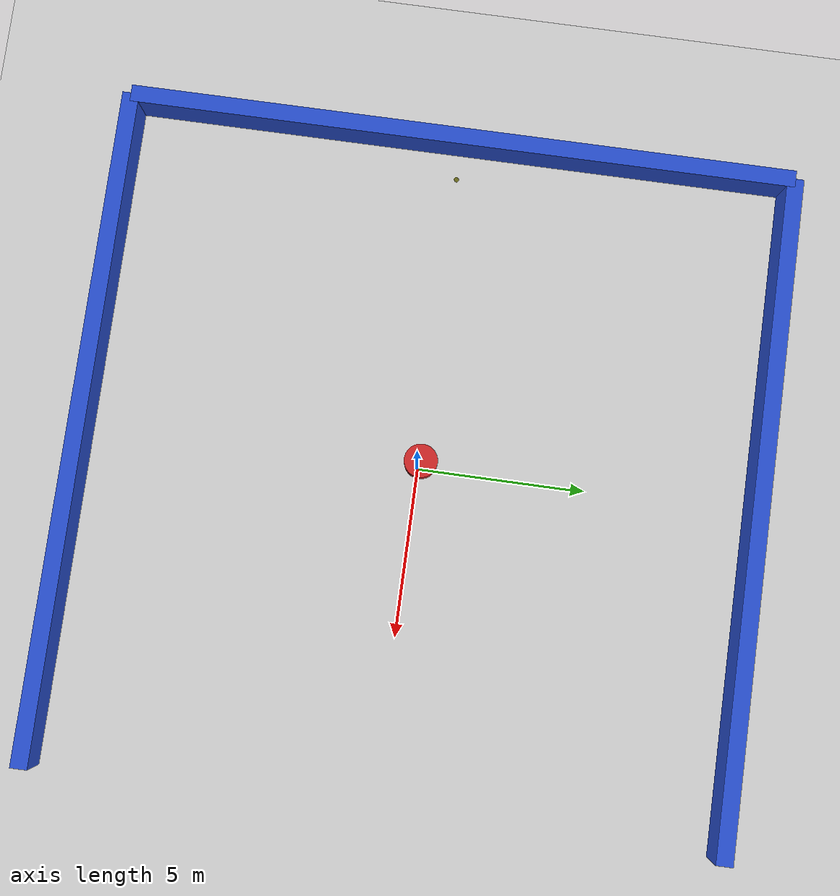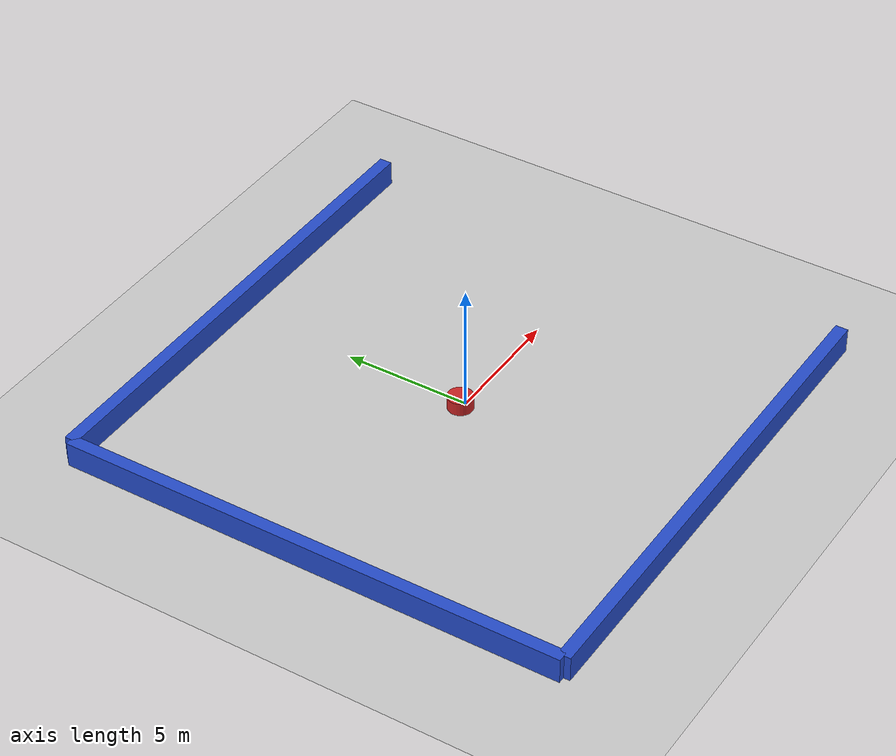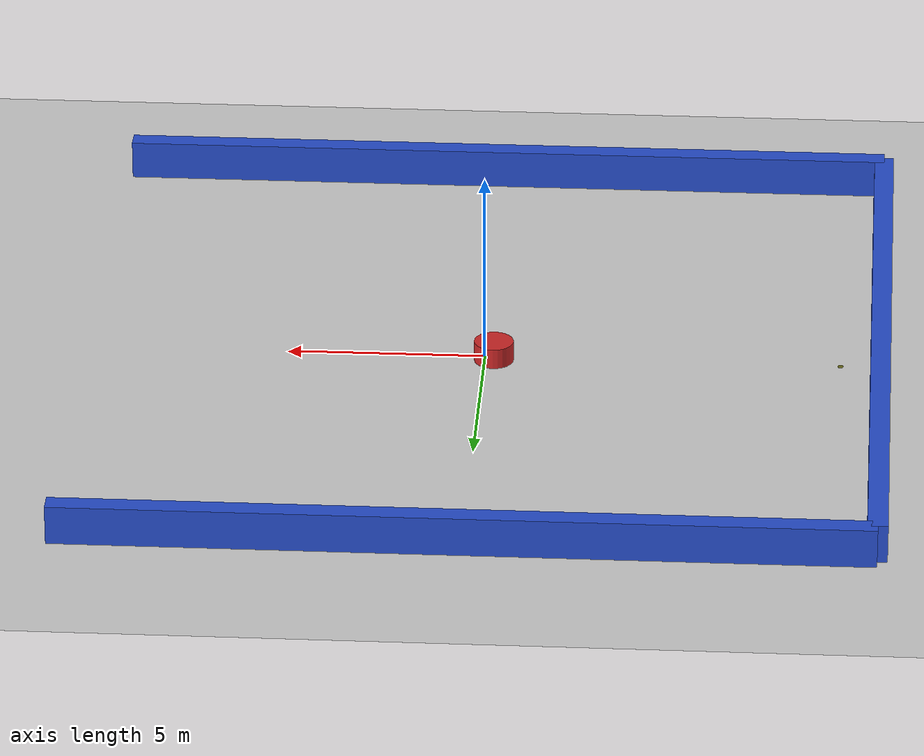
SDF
<sdf version="1.6">
   <world name="default">
      <include>
         <uri>model://ground_plane</uri>
      </include>
      <include>
         <uri>model://sun</uri>
      </include>

    <model name="hardlibobs_103">
      <static>1</static>
      <pose frame="">-0.225000 0.075000 0.000000 0.000000 0.000000 0.000000</pose>
      <link name="link">
        <inertial>
          <mass>1</mass>
          <inertia>
            <ixx>0.145833</ixx>
            <ixy>0</ixy>
            <ixz>0</ixz>
            <iyy>0.145833</iyy>
            <iyz>0</iyz>
            <izz>0.125</izz>
          </inertia>
        </inertial>
        <collision name="collision">
           <geometry>
            <cylinder>
                <radius>0.5000</radius>
                 <length> 1 </length>
            </cylinder>
          </geometry>
           <surface>
            <contact>
              <ode />
            </contact>
            <bounce />
            <friction>
              <torsional>
                <ode />
              </torsional>
              <ode />
            </friction>
          </surface>
        </collision>
        <visual name="visual">
           <geometry>
            <cylinder>
                <radius>0.5000</radius>
                 <length> 1 </length>
            </cylinder>
          </geometry>
          <material>
            <script>
              <name>Gazebo/Red</name>
              <uri>file://media/materials/scripts/gazebo.material</uri>
            </script>
          </material>
        </visual>
        <self_collide>0</self_collide>
        <kinematic>0</kinematic>
        <gravity>1</gravity>
      </link>
      <plugin name="hardlibobs_103" filename="hardlibobs_103.so" />
    </model>

    <model name="hardlibobs_66">
      <static>1</static>
      <pose frame="">-0.225000 0.075000 0.000000 0.000000 0.000000 0.000000</pose>
      <link name="link">
        <inertial>
          <mass>1</mass>
          <inertia>
            <ixx>0.145833</ixx>
            <ixy>0</ixy>
            <ixz>0</ixz>
            <iyy>0.145833</iyy>
            <iyz>0</iyz>
            <izz>0.125</izz>
          </inertia>
        </inertial>
        <collision name="collision">
           <geometry>
            <cylinder>
                <radius>0.5000</radius>
                 <length> 1 </length>
            </cylinder>
          </geometry>
           <surface>
            <contact>
              <ode />
            </contact>
            <bounce />
            <friction>
              <torsional>
                <ode />
              </torsional>
              <ode />
            </friction>
          </surface>
        </collision>
        <visual name="visual">
           <geometry>
            <cylinder>
                <radius>0.5000</radius>
                 <length> 1 </length>
            </cylinder>
          </geometry>
          <material>
            <script>
              <name>Gazebo/Red</name>
              <uri>file://media/materials/scripts/gazebo.material</uri>
            </script>
          </material>
        </visual>
        <self_collide>0</self_collide>
        <kinematic>0</kinematic>
        <gravity>1</gravity>
      </link>
      <plugin name="hardlibobs_66" filename="hardlibobs_66.so" />
    </model>

    <model name="hardlibobs_44">
      <static>1</static>
      <pose frame="">-0.225000 0.075000 0.000000 0.000000 0.000000 0.000000</pose>
      <link name="link">
        <inertial>
          <mass>1</mass>
          <inertia>
            <ixx>0.145833</ixx>
            <ixy>0</ixy>
            <ixz>0</ixz>
            <iyy>0.145833</iyy>
            <iyz>0</iyz>
            <izz>0.125</izz>
          </inertia>
        </inertial>
        <collision name="collision">
           <geometry>
            <cylinder>
                <radius>0.5000</radius>
                 <length> 1 </length>
            </cylinder>
          </geometry>
           <surface>
            <contact>
              <ode />
            </contact>
            <bounce />
            <friction>
              <torsional>
                <ode />
              </torsional>
              <ode />
            </friction>
          </surface>
        </collision>
        <visual name="visual">
           <geometry>
            <cylinder>
                <radius>0.5000</radius>
                 <length> 1 </length>
            </cylinder>
          </geometry>
          <material>
            <script>
              <name>Gazebo/Red</name>
              <uri>file://media/materials/scripts/gazebo.material</uri>
            </script>
          </material>
        </visual>
        <self_collide>0</self_collide>
        <kinematic>0</kinematic>
        <gravity>1</gravity>
      </link>
      <plugin name="hardlibobs_44" filename="hardlibobs_44.so" />
    </model>

    <model name="mediumlibobs_86">
      <static>1</static>
      <pose frame="">-0.225000 0.075000 0.000000 0.000000 0.000000 0.000000</pose>
      <link name="link">
        <inertial>
          <mass>1</mass>
          <inertia>
            <ixx>0.145833</ixx>
            <ixy>0</ixy>
            <ixz>0</ixz>
            <iyy>0.145833</iyy>
            <iyz>0</iyz>
            <izz>0.125</izz>
          </inertia>
        </inertial>
        <collision name="collision">
           <geometry>
            <cylinder>
                <radius>0.5000</radius>
                 <length> 1 </length>
            </cylinder>
          </geometry>
           <surface>
            <contact>
              <ode />
            </contact>
            <bounce />
            <friction>
              <torsional>
                <ode />
              </torsional>
              <ode />
            </friction>
          </surface>
        </collision>
        <visual name="visual">
           <geometry>
            <cylinder>
                <radius>0.5000</radius>
                 <length> 1 </length>
            </cylinder>
          </geometry>
          <material>
            <script>
              <name>Gazebo/Red</name>
              <uri>file://media/materials/scripts/gazebo.material</uri>
            </script>
          </material>
        </visual>
        <self_collide>0</self_collide>
        <kinematic>0</kinematic>
        <gravity>1</gravity>
      </link>
      <plugin name="mediumlibobs_86" filename="mediumlibobs_86.so" />
    </model>

    <model name="hardlibobs_131">
      <static>1</static>
      <pose frame="">-0.225000 0.075000 0.000000 0.000000 0.000000 0.000000</pose>
      <link name="link">
        <inertial>
          <mass>1</mass>
          <inertia>
            <ixx>0.145833</ixx>
            <ixy>0</ixy>
            <ixz>0</ixz>
            <iyy>0.145833</iyy>
            <iyz>0</iyz>
            <izz>0.125</izz>
          </inertia>
        </inertial>
        <collision name="collision">
           <geometry>
            <cylinder>
                <radius>0.5000</radius>
                 <length> 1 </length>
            </cylinder>
          </geometry>
           <surface>
            <contact>
              <ode />
            </contact>
            <bounce />
            <friction>
              <torsional>
                <ode />
              </torsional>
              <ode />
            </friction>
          </surface>
        </collision>
        <visual name="visual">
           <geometry>
            <cylinder>
                <radius>0.5000</radius>
                 <length> 1 </length>
            </cylinder>
          </geometry>
          <material>
            <script>
              <name>Gazebo/Red</name>
              <uri>file://media/materials/scripts/gazebo.material</uri>
            </script>
          </material>
        </visual>
        <self_collide>0</self_collide>
        <kinematic>0</kinematic>
        <gravity>1</gravity>
      </link>
      <plugin name="hardlibobs_131" filename="hardlibobs_131.so" />
    </model>

    <model name="hardlibobs_198">
      <static>1</static>
      <pose frame="">-0.225000 0.075000 0.000000 0.000000 0.000000 0.000000</pose>
      <link name="link">
        <inertial>
          <mass>1</mass>
          <inertia>
            <ixx>0.145833</ixx>
            <ixy>0</ixy>
            <ixz>0</ixz>
            <iyy>0.145833</iyy>
            <iyz>0</iyz>
            <izz>0.125</izz>
          </inertia>
        </inertial>
        <collision name="collision">
           <geometry>
            <cylinder>
                <radius>0.5000</radius>
                 <length> 1 </length>
            </cylinder>
          </geometry>
           <surface>
            <contact>
              <ode />
            </contact>
            <bounce />
            <friction>
              <torsional>
                <ode />
              </torsional>
              <ode />
            </friction>
          </surface>
        </collision>
        <visual name="visual">
           <geometry>
            <cylinder>
                <radius>0.5000</radius>
                 <length> 1 </length>
            </cylinder>
          </geometry>
          <material>
            <script>
              <name>Gazebo/Red</name>
              <uri>file://media/materials/scripts/gazebo.material</uri>
            </script>
          </material>
        </visual>
        <self_collide>0</self_collide>
        <kinematic>0</kinematic>
        <gravity>1</gravity>
      </link>
      <plugin name="hardlibobs_198" filename="hardlibobs_198.so" />
    </model>

    <model name="mediumlibobs_88">
      <static>1</static>
      <pose frame="">-0.225000 0.075000 0.000000 0.000000 0.000000 0.000000</pose>
      <link name="link">
        <inertial>
          <mass>1</mass>
          <inertia>
            <ixx>0.145833</ixx>
            <ixy>0</ixy>
            <ixz>0</ixz>
            <iyy>0.145833</iyy>
            <iyz>0</iyz>
            <izz>0.125</izz>
          </inertia>
        </inertial>
        <collision name="collision">
           <geometry>
            <cylinder>
                <radius>0.5000</radius>
                 <length> 1 </length>
            </cylinder>
          </geometry>
           <surface>
            <contact>
              <ode />
            </contact>
            <bounce />
            <friction>
              <torsional>
                <ode />
              </torsional>
              <ode />
            </friction>
          </surface>
        </collision>
        <visual name="visual">
           <geometry>
            <cylinder>
                <radius>0.5000</radius>
                 <length> 1 </length>
            </cylinder>
          </geometry>
          <material>
            <script>
              <name>Gazebo/Red</name>
              <uri>file://media/materials/scripts/gazebo.material</uri>
            </script>
          </material>
        </visual>
        <self_collide>0</self_collide>
        <kinematic>0</kinematic>
        <gravity>1</gravity>
      </link>
      <plugin name="mediumlibobs_88" filename="mediumlibobs_88.so" />
    </model>

    <model name="hardlibobs_126">
      <static>1</static>
      <pose frame="">-0.225000 0.075000 0.000000 0.000000 0.000000 0.000000</pose>
      <link name="link">
        <inertial>
          <mass>1</mass>
          <inertia>
            <ixx>0.145833</ixx>
            <ixy>0</ixy>
            <ixz>0</ixz>
            <iyy>0.145833</iyy>
            <iyz>0</iyz>
            <izz>0.125</izz>
          </inertia>
        </inertial>
        <collision name="collision">
           <geometry>
            <cylinder>
                <radius>0.5000</radius>
                 <length> 1 </length>
            </cylinder>
          </geometry>
           <surface>
            <contact>
              <ode />
            </contact>
            <bounce />
            <friction>
              <torsional>
                <ode />
              </torsional>
              <ode />
            </friction>
          </surface>
        </collision>
        <visual name="visual">
           <geometry>
            <cylinder>
                <radius>0.5000</radius>
                 <length> 1 </length>
            </cylinder>
          </geometry>
          <material>
            <script>
              <name>Gazebo/Red</name>
              <uri>file://media/materials/scripts/gazebo.material</uri>
            </script>
          </material>
        </visual>
        <self_collide>0</self_collide>
        <kinematic>0</kinematic>
        <gravity>1</gravity>
      </link>
      <plugin name="hardlibobs_126" filename="hardlibobs_126.so" />
    </model>

    <model name="mediumlibobs_156">
      <static>1</static>
      <pose frame="">-0.225000 0.075000 0.000000 0.000000 0.000000 0.000000</pose>
      <link name="link">
        <inertial>
          <mass>1</mass>
          <inertia>
            <ixx>0.145833</ixx>
            <ixy>0</ixy>
            <ixz>0</ixz>
            <iyy>0.145833</iyy>
            <iyz>0</iyz>
            <izz>0.125</izz>
          </inertia>
        </inertial>
        <collision name="collision">
           <geometry>
            <cylinder>
                <radius>0.5000</radius>
                 <length> 1 </length>
            </cylinder>
          </geometry>
           <surface>
            <contact>
              <ode />
            </contact>
            <bounce />
            <friction>
              <torsional>
                <ode />
              </torsional>
              <ode />
            </friction>
          </surface>
        </collision>
        <visual name="visual">
           <geometry>
            <cylinder>
                <radius>0.5000</radius>
                 <length> 1 </length>
            </cylinder>
          </geometry>
          <material>
            <script>
              <name>Gazebo/Red</name>
              <uri>file://media/materials/scripts/gazebo.material</uri>
            </script>
          </material>
        </visual>
        <self_collide>0</self_collide>
        <kinematic>0</kinematic>
        <gravity>1</gravity>
      </link>
      <plugin name="mediumlibobs_156" filename="mediumlibobs_156.so" />
    </model>

    <model name="hardlibobs_118">
      <static>1</static>
      <pose frame="">-0.225000 0.075000 0.000000 0.000000 0.000000 0.000000</pose>
      <link name="link">
        <inertial>
          <mass>1</mass>
          <inertia>
            <ixx>0.145833</ixx>
            <ixy>0</ixy>
            <ixz>0</ixz>
            <iyy>0.145833</iyy>
            <iyz>0</iyz>
            <izz>0.125</izz>
          </inertia>
        </inertial>
        <collision name="collision">
           <geometry>
            <cylinder>
                <radius>0.5000</radius>
                 <length> 1 </length>
            </cylinder>
          </geometry>
           <surface>
            <contact>
              <ode />
            </contact>
            <bounce />
            <friction>
              <torsional>
                <ode />
              </torsional>
              <ode />
            </friction>
          </surface>
        </collision>
        <visual name="visual">
           <geometry>
            <cylinder>
                <radius>0.5000</radius>
                 <length> 1 </length>
            </cylinder>
          </geometry>
          <material>
            <script>
              <name>Gazebo/Red</name>
              <uri>file://media/materials/scripts/gazebo.material</uri>
            </script>
          </material>
        </visual>
        <self_collide>0</self_collide>
        <kinematic>0</kinematic>
        <gravity>1</gravity>
      </link>
      <plugin name="hardlibobs_118" filename="hardlibobs_118.so" />
    </model>

    <model name="hardlibobs_68">
      <static>1</static>
      <pose frame="">-0.225000 0.075000 0.000000 0.000000 0.000000 0.000000</pose>
      <link name="link">
        <inertial>
          <mass>1</mass>
          <inertia>
            <ixx>0.145833</ixx>
            <ixy>0</ixy>
            <ixz>0</ixz>
            <iyy>0.145833</iyy>
            <iyz>0</iyz>
            <izz>0.125</izz>
          </inertia>
        </inertial>
        <collision name="collision">
           <geometry>
            <cylinder>
                <radius>0.5000</radius>
                 <length> 1 </length>
            </cylinder>
          </geometry>
           <surface>
            <contact>
              <ode />
            </contact>
            <bounce />
            <friction>
              <torsional>
                <ode />
              </torsional>
              <ode />
            </friction>
          </surface>
        </collision>
        <visual name="visual">
           <geometry>
            <cylinder>
                <radius>0.5000</radius>
                 <length> 1 </length>
            </cylinder>
          </geometry>
          <material>
            <script>
              <name>Gazebo/Red</name>
              <uri>file://media/materials/scripts/gazebo.material</uri>
            </script>
          </material>
        </visual>
        <self_collide>0</self_collide>
        <kinematic>0</kinematic>
        <gravity>1</gravity>
      </link>
      <plugin name="hardlibobs_68" filename="hardlibobs_68.so" />
    </model>

      <model name="back_wall">
      <static>1</static>\   <pose frame="">-10 0 .5 0 0 0</pose>        <link name="box_link">

	<collision name="collision">
            <geometry>
              <box>
                <size>.5 20 1</size>
              </box>
            </geometry>
           <surface>
            <contact>
              <ode />
            </contact>
            <bounce />
            <friction>
              <torsional>
                <ode />
              </torsional>
              <ode />
            </friction>
          </surface>
        </collision>

          <visual name="visual">
            <geometry>
              <box>
                <size>.5 20 1</size>
              </box>
            </geometry>
          <material>
                 <script>
                     <name>Gazebo/Blue</name>
                         <uri>file://media/materials/scripts/gazebo.material</uri>
                         </script>
                     </material>
          </visual>
        </link>
      </model>
      <model name="top_wall">
      <static>1</static>
       <pose frame="">0 10 .5 0 0 0</pose>        <link name="box_link">

	<collision name="collision">
           <geometry>
              <box>
                <size>20 .5 1</size>
              </box>
            </geometry>
           <surface>
            <contact>
              <ode />
            </contact>
            <bounce />
            <friction>
              <torsional>
                <ode />
              </torsional>
              <ode />
            </friction>
          </surface>
        </collision>
          <visual name="visual">
            <geometry>
              <box>
                <size>20 .5 1</size>
              </box>
            </geometry>
          <material>
                 <script>
                     <name>Gazebo/Blue</name>
                         <uri>file://media/materials/scripts/gazebo.material</uri>
                         </script>
                     </material>
          </visual>
        </link>
      </model>
      <model name="bottom_wall">
      <static>1</static>
       <pose frame="">0 -10 .5 0 0 0</pose>        <link name="box_link">
	<collision name="collision">
            <geometry>
              <box>
                <size>20 .5 1</size>
              </box>
            </geometry>
           <surface>
            <contact>
              <ode />
            </contact>
            <bounce />
            <friction>
              <torsional>
                <ode />
              </torsional>
              <ode />
            </friction>
          </surface>
        </collision>
          <visual name="visual">
            <geometry>
              <box>
                <size>20 .5 1</size>
              </box>
            </geometry>
          <material>
                 <script>
                     <name>Gazebo/Blue</name>
                         <uri>file://media/materials/scripts/gazebo.material</uri>
                         </script>
                     </material>
          </visual>
        </link>
      </model>
   <model name="goal"><static>1</static><pose frame="">-9.00000 0.000000 0.000000 0.000000 0.000000 0.000000</pose><link name="link"><inertial><mass>1</mass><inertia><ixx>0.145833</ixx><ixy>0</ixy><ixz>0</ixz><iyy>0.145833</iyy><iyz>0</iyz><izz>0.125</izz></inertia></inertial><collision name="collision"><geometry><cylinder><radius>0.075000</radius><length>1</length></cylinder></geometry><max_contacts>10</max_contacts><surface><contact><ode /></contact><bounce /><friction><torsional><ode /></torsional><ode /></friction></surface></collision><visual name="visual"><geometry><cylinder><radius>0.075000</radius><length>0.001</length></cylinder></geometry><material><ambient>0 1 0 1</ambient><diffuse>0.4 0.4 0.1 1</diffuse></material><material><script><name>Gazebo/Grey</name><uri>file://media/materials/scripts/gazebo.material</uri></script></material></visual><self_collide>0</self_collide><kinematic>0</kinematic><gravity>0</gravity></link></model></world>
</sdf>
